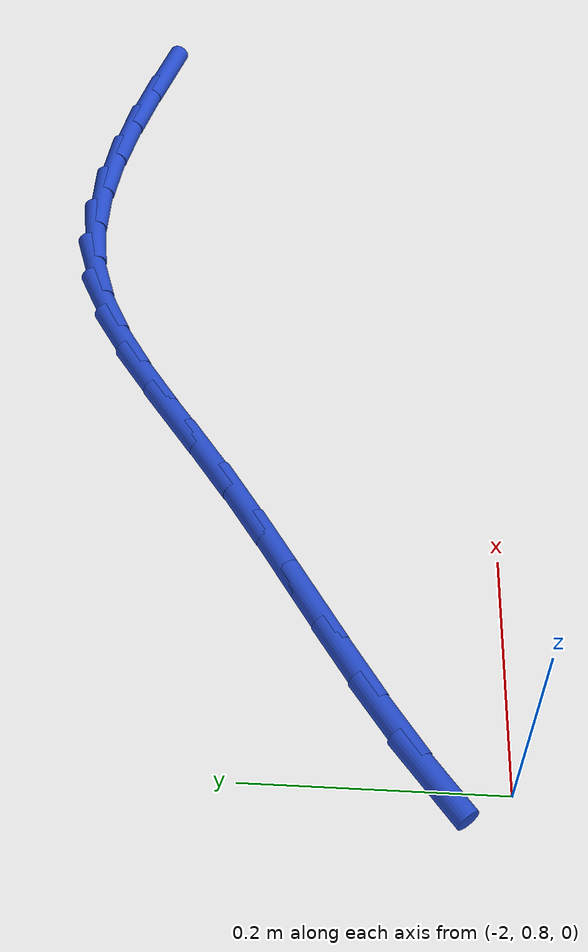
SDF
<sdf version="1.6">
 <world name="default">
  <model name="ground_plane">
   <static>1</static>
   <link name="link">
    <collision name="collision">
     <geometry><plane><normal>0 0 1</normal><size>100 100</size></plane></geometry>
     <surface><friction><ode><mu>100</mu><mu2>50</mu2></ode></friction></surface>
    </collision>
    <visual name="visual">
     <cast_shadows>0</cast_shadows>
     <geometry><plane><normal>0 0 1</normal><size>100 100</size></plane></geometry>
     <material>
      <script><uri>file://media/materials/scripts/gazebo.material</uri><name>Gazebo/WhiteGlow</name></script>
     </material>
    </visual>
   </link>
  </model>
  <model name="line">
   <link name="link_35">
    <pose>-1.1957751997143389 1.1292968901179297 0.01 0 1.57 -0.2839919253931296</pose>
    <collision name="collision">
     <geometry><cylinder><radius>0.01</radius><length>0.08</length></cylinder></geometry>
    </collision>
    <visual name="visual">
     <material>
      <script><name>Gazebo/Blue</name><uri>file://media/materials/scripts/gazebo.material</uri></script>
     </material>
     <geometry><cylinder><radius>0.01</radius><length>0.08</length></cylinder></geometry>
    </visual>
   </link>
   <link name="link_36">
    <pose>-1.2478467144218943 1.1444955927397207 0.01 0 1.57 -0.25239280091441885</pose>
    <collision name="collision">
     <geometry><cylinder><radius>0.01</radius><length>0.08</length></cylinder></geometry>
    </collision>
    <visual name="visual">
     <material>
      <script><name>Gazebo/Blue</name><uri>file://media/materials/scripts/gazebo.material</uri></script>
     </material>
     <geometry><cylinder><radius>0.01</radius><length>0.08</length></cylinder></geometry>
    </visual>
   </link>
   <link name="link_37">
    <pose>-1.2991789700364174 1.1577337859297863 0.01 0 1.57 -0.1971168937796746</pose>
    <collision name="collision">
     <geometry><cylinder><radius>0.01</radius><length>0.08</length></cylinder></geometry>
    </collision>
    <visual name="visual">
     <material>
      <script><name>Gazebo/Blue</name><uri>file://media/materials/scripts/gazebo.material</uri></script>
     </material>
     <geometry><cylinder><radius>0.01</radius><length>0.08</length></cylinder></geometry>
    </visual>
   </link>
   <link name="link_38">
    <pose>-1.3496078045588575 1.1678049387310399 0.01 0 1.57 -0.11491763898033701</pose>
    <collision name="collision">
     <geometry><cylinder><radius>0.01</radius><length>0.08</length></cylinder></geometry>
    </collision>
    <visual name="visual">
     <material>
      <script><name>Gazebo/Blue</name><uri>file://media/materials/scripts/gazebo.material</uri></script>
     </material>
     <geometry><cylinder><radius>0.01</radius><length>0.08</length></cylinder></geometry>
    </visual>
   </link>
   <link name="link_39">
    <pose>-1.3989690559901689 1.1735025201863962 0.01 0 1.57 -0.0024408918352235385</pose>
    <collision name="collision">
     <geometry><cylinder><radius>0.01</radius><length>0.08</length></cylinder></geometry>
    </collision>
    <visual name="visual">
     <material>
      <script><name>Gazebo/Blue</name><uri>file://media/materials/scripts/gazebo.material</uri></script>
     </material>
     <geometry><cylinder><radius>0.01</radius><length>0.08</length></cylinder></geometry>
    </visual>
   </link>
   <link name="link_40">
    <pose>-1.4470985623313013 1.1736199993387695 0.01 0 1.57 0.1417487027392468</pose>
    <collision name="collision">
     <geometry><cylinder><radius>0.01</radius><length>0.08</length></cylinder></geometry>
    </collision>
    <visual name="visual">
     <material>
      <script><name>Gazebo/Blue</name><uri>file://media/materials/scripts/gazebo.material</uri></script>
     </material>
     <geometry><cylinder><radius>0.01</radius><length>0.08</length></cylinder></geometry>
    </visual>
   </link>
   <link name="link_41">
    <pose>-1.4938321615832073 1.1669508452310737 0.01 0 1.57 0.30954262503907953</pose>
    <collision name="collision">
     <geometry><cylinder><radius>0.01</radius><length>0.08</length></cylinder></geometry>
    </collision>
    <visual name="visual">
     <material>
      <script><name>Gazebo/Blue</name><uri>file://media/materials/scripts/gazebo.material</uri></script>
     </material>
     <geometry><cylinder><radius>0.01</radius><length>0.08</length></cylinder></geometry>
    </visual>
   </link>
   <link name="link_42">
    <pose>-1.5390575189143194 1.1524867234338771 0.01 0 1.57 0.4533053883004914</pose>
    <collision name="collision">
     <geometry><cylinder><radius>0.01</radius><length>0.08</length></cylinder></geometry>
    </collision>
    <visual name="visual">
     <material>
      <script><name>Gazebo/Blue</name><uri>file://media/materials/scripts/gazebo.material</uri></script>
     </material>
     <geometry><cylinder><radius>0.01</radius><length>0.08</length></cylinder></geometry>
    </visual>
   </link>
   <link name="link_43">
    <pose>-1.5831321941276177 1.1310162621814484 0.01 0 1.57 0.5507011513820227</pose>
    <collision name="collision">
     <geometry><cylinder><radius>0.01</radius><length>0.08</length></cylinder></geometry>
    </collision>
    <visual name="visual">
     <material>
      <script><name>Gazebo/Blue</name><uri>file://media/materials/scripts/gazebo.material</uri></script>
     </material>
     <geometry><cylinder><radius>0.01</radius><length>0.08</length></cylinder></geometry>
    </visual>
   </link>
   <link name="link_44">
    <pose>-1.6266639028088785 1.1042847309819646 0.01 0 1.57 0.6063917639440316</pose>
    <collision name="collision">
     <geometry><cylinder><radius>0.01</radius><length>0.08</length></cylinder></geometry>
    </collision>
    <visual name="visual">
     <material>
      <script><name>Gazebo/Blue</name><uri>file://media/materials/scripts/gazebo.material</uri></script>
     </material>
     <geometry><cylinder><radius>0.01</radius><length>0.08</length></cylinder></geometry>
    </visual>
   </link>
   <link name="link_45">
    <pose>-1.6702626859289698 1.0740462920397138 0.01 0 1.57 0.6256949915375298</pose>
    <collision name="collision">
     <geometry><cylinder><radius>0.01</radius><length>0.08</length></cylinder></geometry>
    </collision>
    <visual name="visual">
     <material>
      <script><name>Gazebo/Blue</name><uri>file://media/materials/scripts/gazebo.material</uri></script>
     </material>
     <geometry><cylinder><radius>0.01</radius><length>0.08</length></cylinder></geometry>
    </visual>
   </link>
   <link name="link_46">
    <pose>-1.7145385844587604 1.0420551075589826 0.01 0 1.57 0.6122013956370432</pose>
    <collision name="collision">
     <geometry><cylinder><radius>0.01</radius><length>0.08</length></cylinder></geometry>
    </collision>
    <visual name="visual">
     <material>
      <script><name>Gazebo/Blue</name><uri>file://media/materials/scripts/gazebo.material</uri></script>
     </material>
     <geometry><cylinder><radius>0.01</radius><length>0.08</length></cylinder></geometry>
    </visual>
   </link>
   <link name="link_47">
    <pose>-1.7600995076961947 1.010062196872103 0.01 0 1.57 0.5812556445735787</pose>
    <collision name="collision">
     <geometry><cylinder><radius>0.01</radius><length>0.08</length></cylinder></geometry>
    </collision>
    <visual name="visual">
     <material>
      <script><name>Gazebo/Blue</name><uri>file://media/materials/scripts/gazebo.material</uri></script>
     </material>
     <geometry><cylinder><radius>0.01</radius><length>0.08</length></cylinder></geometry>
    </visual>
   </link>
   <link name="link_48">
    <pose>-1.8071161341715574 0.9791739399284247 0.01 0 1.57 0.563237297716324</pose>
    <collision name="collision">
     <geometry><cylinder><radius>0.01</radius><length>0.08</length></cylinder></geometry>
    </collision>
    <visual name="visual">
     <material>
      <script><name>Gazebo/Blue</name><uri>file://media/materials/scripts/gazebo.material</uri></script>
     </material>
     <geometry><cylinder><radius>0.01</radius><length>0.08</length></cylinder></geometry>
    </visual>
   </link>
   <link name="link_49">
    <pose>-1.8547907372028265 0.9490689302891719 0.01 0 1.57 0.5617282108317725</pose>
    <collision name="collision">
     <geometry><cylinder><radius>0.01</radius><length>0.08</length></cylinder></geometry>
    </collision>
    <visual name="visual">
     <material>
      <script><name>Gazebo/Blue</name><uri>file://media/materials/scripts/gazebo.material</uri></script>
     </material>
     <geometry><cylinder><radius>0.01</radius><length>0.08</length></cylinder></geometry>
    </visual>
   </link>
   <link name="link_50">
    <pose>-1.9021956540900211 0.9192341879104146 0.01 0 1.57 0.577022077002782</pose>
    <collision name="collision">
     <geometry><cylinder><radius>0.01</radius><length>0.08</length></cylinder></geometry>
    </collision>
    <visual name="visual">
     <material>
      <script><name>Gazebo/Blue</name><uri>file://media/materials/scripts/gazebo.material</uri></script>
     </material>
     <geometry><cylinder><radius>0.01</radius><length>0.08</length></cylinder></geometry>
    </visual>
   </link>
   <link name="link_51">
    <pose>-1.9484032221331598 0.8891567327482232 0.01 0 1.57 0.6103507070461927</pose>
    <collision name="collision">
     <geometry><cylinder><radius>0.01</radius><length>0.08</length></cylinder></geometry>
    </collision>
    <visual name="visual">
     <material>
      <script><name>Gazebo/Blue</name><uri>file://media/materials/scripts/gazebo.material</uri></script>
     </material>
     <geometry><cylinder><radius>0.01</radius><length>0.08</length></cylinder></geometry>
    </visual>
   </link>
   <link name="link_52">
    <pose>-1.9924857786322612 0.858323584758668 0.01 0 1.57 0.6639173437627273</pose>
    <collision name="collision">
     <geometry><cylinder><radius>0.01</radius><length>0.08</length></cylinder></geometry>
    </collision>
    <visual name="visual">
     <material>
      <script><name>Gazebo/Blue</name><uri>file://media/materials/scripts/gazebo.material</uri></script>
     </material>
     <geometry><cylinder><radius>0.01</radius><length>0.08</length></cylinder></geometry>
    </visual>
   </link>
  </model>
 </world>
</sdf>
